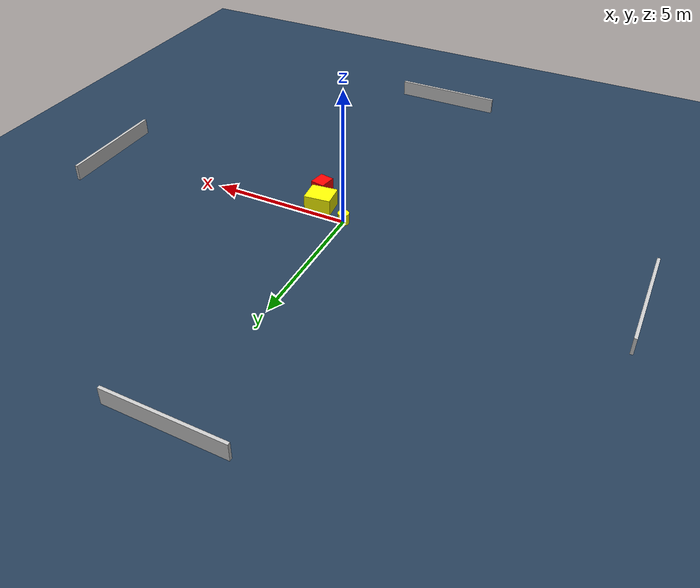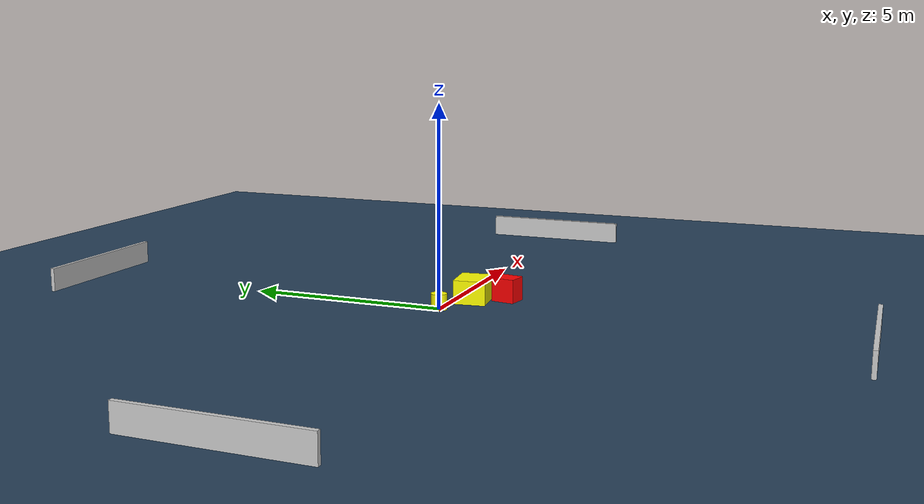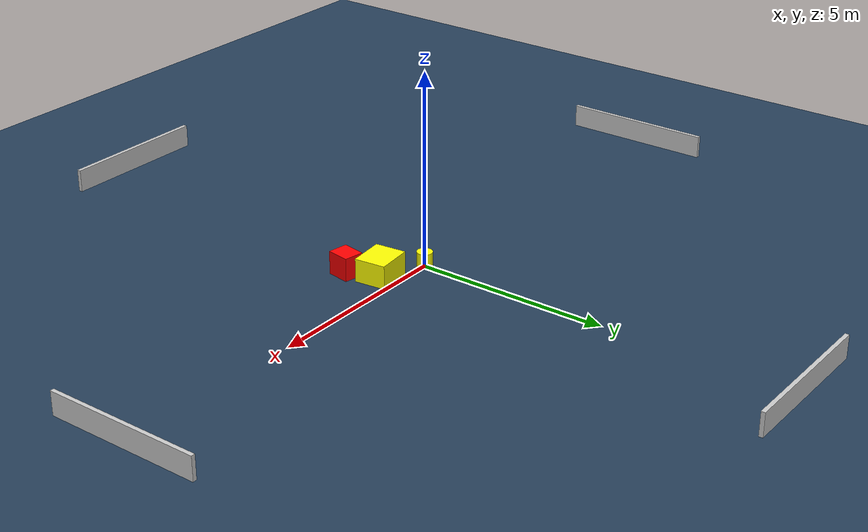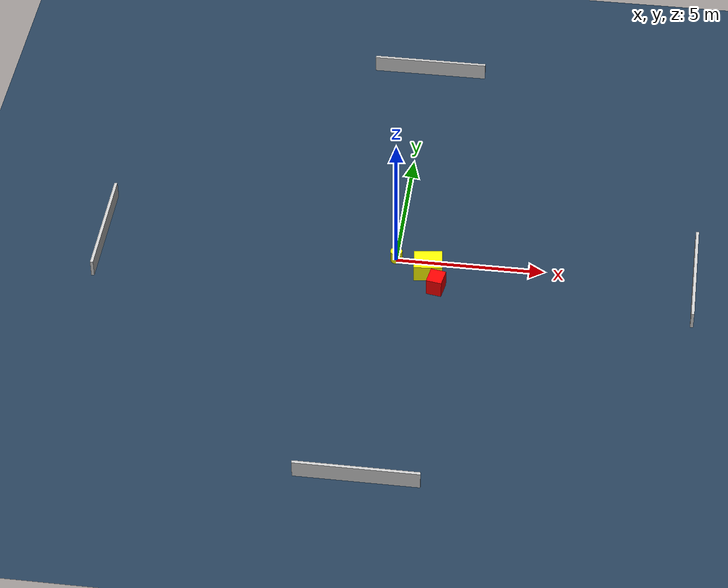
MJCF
<?xml version="1.0" ?>
<mujoco model="generated_environment">
  <option timestep="0.01" integrator="RK4" cone="elliptic"/>
  <default>
    <geom density="1"/>
  </default>
  <asset>
    <texture builtin="gradient" height="3072" name="skybox" rgb1="0.3 0.5 0.7" rgb2="0 0 0" type="skybox" width="512"/>
    <texture builtin="checker" height="300" name="groundplane" rgb1="0.2 0.3 0.4" rgb2="0.1 0.2 0.3" type="2d" width="300"/>
    <material name="groundplane" reflectance="0.2" texrepeat="5 5" texture="groundplane"/>
  </asset>
  <worldbody>
    <light dir="0 0 -1" directional="true" pos="0 0 1.5"/>
    <geom condim="3" friction="0.5 0.005 0.001" material="groundplane" name="floor" pos="0 0 0" size="0 0 0.05" type="plane"/>
    <body name="walls">
      <geom name="wall_1" condim="4" pos="-10.0 0.0 0.3" rgba="0.800000011920929 0.800000011920929 0.800000011920929 1.0" size="0.05 2.0 0.3" type="box"/>
      <geom name="wall_2" condim="4" pos="10.0 0.0 0.3" rgba="0.800000011920929 0.800000011920929 0.800000011920929 1.0" size="0.05 2.0 0.3" type="box"/>
      <geom name="wall_3" condim="4" pos="0.0 -10.0 0.3" rgba="0.800000011920929 0.800000011920929 0.800000011920929 1.0" size="2.0 0.05 0.3" type="box"/>
      <geom name="wall_4" condim="4" pos="0.0 10.0 0.3" rgba="0.800000011920929 0.800000011920929 0.800000011920929 1.0" size="2.0 0.05 0.3" type="box"/>
    </body>
    <body name="robot">
      <joint name="joint_x" type="slide" pos="0 0 0" axis="1 0 0"/>
      <joint name="joint_y" type="slide" pos="0 0 0" axis="0 1 0"/>
      <geom name="robot" type="cylinder" pos="0.0 0.0 0.2" size="0.2 0.2 0.0" mass="5.0" friction="1.0 0.005 0.0001" condim="4" rgba="1.0 1.0 0.0 1.0"/>
    </body>
    <body name="obstacle_1_movable">
      <geom name="obstacle_1_movable" condim="4" pos="1.1232523463111517 -0.48011148036996176 0.3" euler="0 0 186.17294125677626" friction="0.0 0.005 0.001" rgba="1.0 1.0 0.0 1.0" size="0.4755002050719172 0.40468762141792813 0.3" type="box" mass="0.1"/>
      <joint type="free"/>
    </body>
    <body name="obstacle_2_static">
      <geom name="obstacle_2_static" condim="4" pos="1.4809883831242467 -1.2488062440913335 0.3" euler="0 0 350.07968214218386" friction="0.0 0.005 0.001" rgba="1.0 0.0 0.0 1.0" size="0.26082550959317513 0.2983493004299485 0.3" type="box"/>
    </body>
  </worldbody>
  <actuator>
    <motor name="actuator_x" joint="joint_x" gear="1" ctrlrange="-1 1"/>
    <motor name="actuator_y" joint="joint_y" gear="1" ctrlrange="-1 1"/>
  </actuator>
</mujoco>
